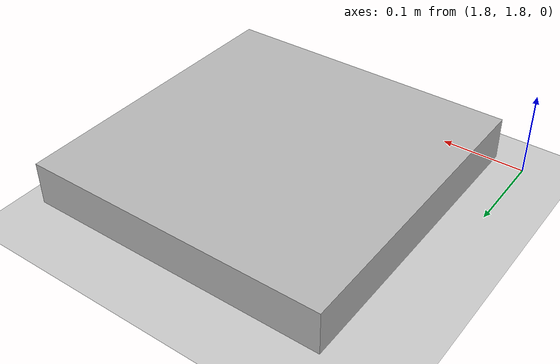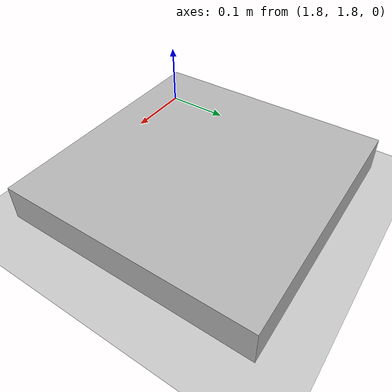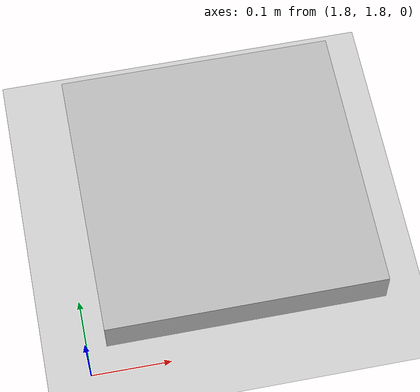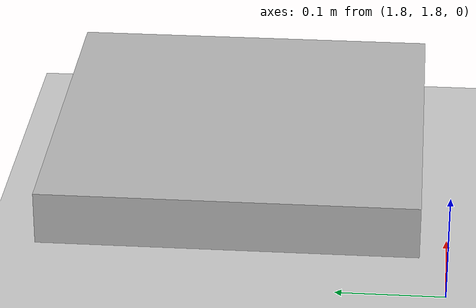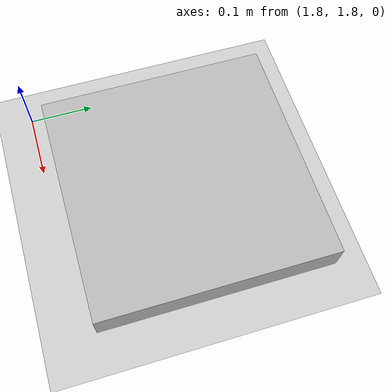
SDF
<sdf version="1.7">
 <world name="default">
  <model name="ground_plane">
   <static>1</static>
   <link name="link">
    <collision name="collision">
     <geometry><plane><normal>0 0 1</normal><size>100 100</size></plane></geometry>
     <surface>
      <contact><collide_bitmask>65535</collide_bitmask></contact>
      <friction><ode><mu>100</mu><mu2>50</mu2></ode></friction>
     </surface>
    </collision>
    <visual name="visual">
     <cast_shadows>0</cast_shadows>
     <geometry><plane><normal>0 0 1</normal><size>100 100</size></plane></geometry>
     <material>
      <script><uri>file://media/materials/scripts/gazebo.material</uri><name>Gazebo/Grey</name></script>
     </material>
    </visual>
   </link>
  </model>
  <light name="sun" type="directional">
   <pose>0 0 10 0 -0 0</pose>
   <diffuse>0.8 0.8 0.8 1</diffuse>
   <specular>0.2 0.2 0.2 1</specular>
   <attenuation>
    <range>1000</range>
    <constant>0.9</constant>
    <linear>0.01</linear>
    <quadratic>0.001</quadratic>
   </attenuation>
   <direction>-0.5 0.1 -0.9</direction>
   <spot><inner_angle>0</inner_angle><outer_angle>0</outer_angle><falloff>0</falloff></spot>
  </light>
  <plugin name="ros_interface_plugin" filename="librotors_gazebo_ros_interface_plugin.so"/>
  <spherical_coordinates>
   <surface_model>EARTH_WGS84</surface_model>
   <latitude_deg>47.3667</latitude_deg>
   <longitude_deg>8.55</longitude_deg>
   <elevation>500</elevation>
   <heading_deg>0</heading_deg>
  </spherical_coordinates>
  <physics type="ode">
   <ode>
    <solver>
     <type>quick</type>
     <iters>1000</iters>
     <sor>1.3</sor>
     <use_dynamic_moi_rescaling>0</use_dynamic_moi_rescaling>
    </solver>
    <constraints>
     <cfm>0</cfm>
     <erp>0.2</erp>
     <contact_max_correcting_vel>100</contact_max_correcting_vel>
     <contact_surface_layer>0.001</contact_surface_layer>
    </constraints>
   </ode>
   <max_step_size>0.01</max_step_size>
   <real_time_factor>1</real_time_factor>
   <real_time_update_rate>100</real_time_update_rate>
  </physics>
  <gravity>0 0 -9.8</gravity>
  <magnetic_field>6e-06 2.3e-05 -4.2e-05</magnetic_field>
  <atmosphere type="adiabatic"/>
  <scene><ambient>0.4 0.4 0.4 1</ambient><background>0.7 0.7 0.7 1</background><shadows>1</shadows></scene>
  <include><uri>model://marker_35</uri><pose>2 2 0.05 0 0 0</pose></include>
  <include><uri>model://asphalt_plane</uri></include>
 </world>
</sdf>

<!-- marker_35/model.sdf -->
<sdf version="1.5">

  <model name='Marker 35'>
    <pose frame=''>0 0 0 0 0 0</pose>
    <static>1</static>
    <link name='link'>

      <collision name='collision'>
        <geometry>
          <mesh>
		        <uri>model://marker_35/meshes/box_marker_35.dae</uri>
          </mesh>
        </geometry>
      </collision>

      <visual name='visual'>
        <cast_shadows>1</cast_shadows>
        <geometry>
          <mesh>
		        <uri>model://marker_35/meshes/box_marker_35.dae</uri>
          </mesh>
        </geometry>
      </visual>

      <self_collide>0</self_collide>
      <enable_wind>0</enable_wind>
      <kinematic>0</kinematic>

    </link>
  </model>
</sdf>
